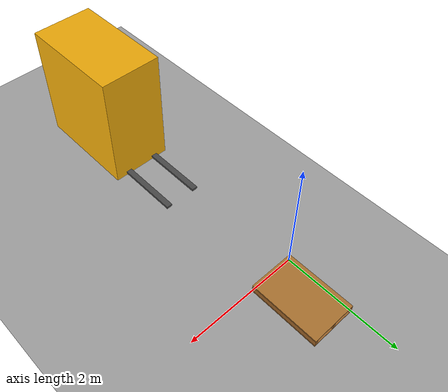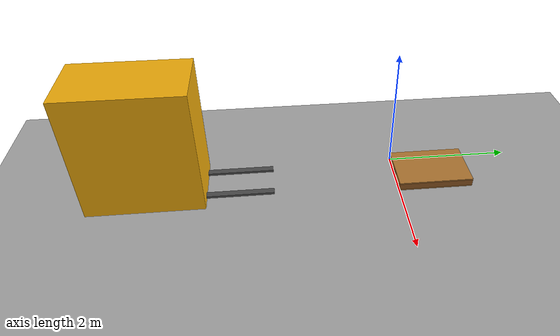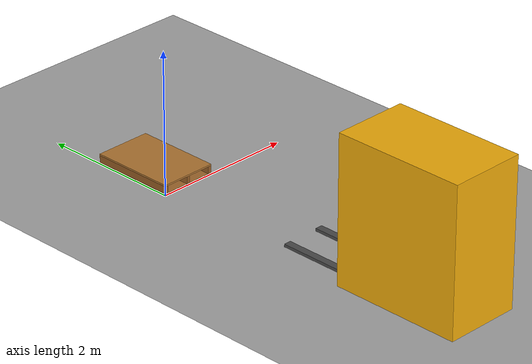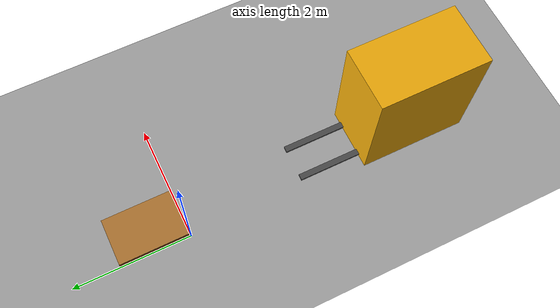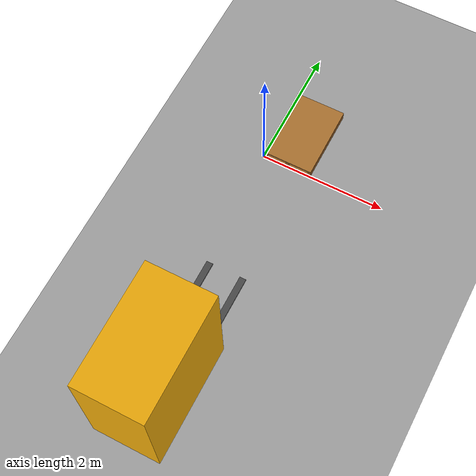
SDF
<?xml version="1.0" ?>
<sdf version="1.10">
  <world name="pallet_towers">
    <gravity>0 0 -9.81</gravity>

    <physics name="pallet_physics" type="ignored">
      <max_step_size>0.002</max_step_size>
      <real_time_factor>1</real_time_factor>
      <real_time_update_rate>500</real_time_update_rate>
      <max_contacts>100</max_contacts>
    </physics>

    <plugin filename="gz-sim-physics-system" name="gz::sim::systems::Physics" />
    <plugin filename="gz-sim-user-commands-system" name="gz::sim::systems::UserCommands" />
    <plugin filename="gz-sim-scene-broadcaster-system" name="gz::sim::systems::SceneBroadcaster" />

    <gui fullscreen="0">
      <plugin filename="MinimalScene" name="3D View">
        <gz-gui>
          <title>3D View</title>
          <property type="bool" key="showTitleBar">false</property>
          <property type="string" key="state">docked</property>
        </gz-gui>
        <engine>ogre2</engine>
        <scene>scene</scene>
        <ambient_light>0.4 0.4 0.4</ambient_light>
        <background_color>0.8 0.8 0.8</background_color>
        <camera_pose>-6 -8 6 0 0.45 0.75</camera_pose>
      </plugin>
      <plugin filename="GzSceneManager" name="Scene Manager" />
      <plugin filename="InteractiveViewControl" name="Interactive view control" />
      <plugin filename="CameraTracking" name="Camera Tracking" />
      <plugin filename="MarkerManager" name="Marker manager" />
      <plugin filename="SelectEntities" name="Select entities" />
      <plugin filename="EntityContextMenuPlugin" name="Entity context menu" />
      <plugin filename="VisualizationCapabilities" name="Visualization capabilities" />
      <plugin filename="WorldControl" name="World control">
        <gz-gui>
          <title>World control</title>
          <property type="bool" key="showTitleBar">false</property>
          <property type="bool" key="resizable">false</property>
          <property type="double" key="height">72</property>
          <property type="double" key="width">121</property>
          <property type="string" key="state">floating</property>
          <anchors target="3D View">
            <line own="left" target="left" />
            <line own="bottom" target="bottom" />
          </anchors>
        </gz-gui>
        <play_pause>true</play_pause>
        <step>true</step>
        <start_paused>true</start_paused>
      </plugin>
      <plugin filename="WorldStats" name="World stats">
        <gz-gui>
          <title>World stats</title>
          <property type="bool" key="showTitleBar">false</property>
          <property type="bool" key="resizable">false</property>
          <property type="double" key="height">110</property>
          <property type="double" key="width">290</property>
          <property type="string" key="state">floating</property>
          <anchors target="3D View">
            <line own="right" target="right" />
            <line own="bottom" target="bottom" />
          </anchors>
        </gz-gui>
        <sim_time>true</sim_time>
        <real_time>true</real_time>
        <real_time_factor>true</real_time_factor>
        <iterations>true</iterations>
      </plugin>
      <plugin filename="ForkliftTeleop"
              name="Forklift teleoperation">
        <gz-gui>
          <title>Forklift controls</title>
          <property type="double" key="width">330</property>
          <property type="double" key="height">230</property>
          <property type="string" key="state">floating</property>
          <anchors target="3D View">
            <line own="right" target="right" />
            <line own="top" target="top" />
          </anchors>
        </gz-gui>
        <drive_topic>/forklift/cmd_vel</drive_topic>
        <left_fork_topic>/forklift/left_fork/cmd_vel</left_fork_topic>
        <right_fork_topic>/forklift/right_fork/cmd_vel</right_fork_topic>
        <world_stats_topic>/world/pallet_towers/stats</world_stats_topic>
        <max_linear_speed>2</max_linear_speed>
        <max_linear_acceleration>0.5</max_linear_acceleration>
        <max_angular_speed>0.8</max_angular_speed>
        <max_angular_acceleration>1</max_angular_acceleration>
        <fork_speed>0.15</fork_speed>
        <update_rate_hz>50</update_rate_hz>
        <forward_key>16777235</forward_key>
        <reverse_key>16777237</reverse_key>
        <left_key>16777234</left_key>
        <right_key>16777236</right_key>
        <lift_key>16777235</lift_key>
        <lower_key>16777237</lower_key>
      </plugin>
    </gui>

    <light type="directional" name="sun">
      <cast_shadows>true</cast_shadows>
      <pose>0 0 10 0 0 0</pose>
      <diffuse>0.8 0.8 0.8 1</diffuse>
      <specular>0.2 0.2 0.2 1</specular>
      <direction>-0.5 0.2 -0.9</direction>
    </light>

    <model name="ground_plane">
      <static>true</static>
      <link name="link">
        <collision name="collision">
          <geometry>
            <plane>
              <normal>0 0 1</normal>
              <size>30 30</size>
            </plane>
          </geometry>

          <surface>
            <friction>
              <ode>
                <mu>0.55</mu>
                <mu2>0.55</mu2>
              </ode>
            </friction>
            <bounce>
              <restitution_coefficient>0</restitution_coefficient>
              <threshold>100000</threshold>
            </bounce>
            <contact>
              <ode>
                <kp>1000000</kp>
                <kd>100</kd>
                <max_vel>1</max_vel>
                <min_depth>0.0005</min_depth>
              </ode>
            </contact>
          </surface>
        </collision>

        <visual name="visual">
          <geometry>
            <plane>
              <normal>0 0 1</normal>
              <size>30 30</size>
            </plane>
          </geometry>
          <material>
            <ambient>0.65 0.65 0.65 1</ambient>
            <diffuse>0.65 0.65 0.65 1</diffuse>
          </material>
        </visual>
      </link>
    </model>

    <model name="pallet_01_P01">
          <static>false</static>
          <pose>0.4 0.6 0.002 0 0 0</pose>
          <self_collide>false</self_collide>
          <allow_auto_disable>false</allow_auto_disable>
          <link name="body">
                <gravity>true</gravity>
                <kinematic>false</kinematic>
                <inertial>
                      <pose>0 0 0.072 0 0 0</pose>
                      <mass>25</mass>
                      <inertia>
                            <ixx>3.07216082</ixx>
                            <ixy>0</ixy>
                            <ixz>0</ixz>
                            <iyy>1.70896776</iyy>
                            <iyz>0</iyz>
                            <izz>4.63680694</izz>
                      </inertia>
                </inertial>
                <collision name="bottom_deck_collision">
                      <pose>0 0 0.011 0 0 0</pose>
                      <geometry>
                            <box>
                                  <size>0.8 1.2 0.022</size>
                            </box>
                      </geometry>
                      <surface>
                            <friction>
                                  <ode>
                                        <mu>0.55</mu>
                                        <mu2>0.55</mu2>
                                  </ode>
                            </friction>
                            <bounce>
                                  <restitution_coefficient>0</restitution_coefficient>
                                  <threshold>100000</threshold>
                            </bounce>
                            <contact>
                                  <ode>
                                        <kp>1000000</kp>
                                        <kd>100</kd>
                                        <max_vel>1</max_vel>
                                        <min_depth>0.0005</min_depth>
                                  </ode>
                            </contact>
                      </surface>
                </collision>
                <visual name="bottom_deck_visual">
                      <pose>0 0 0.011 0 0 0</pose>
                      <geometry>
                            <box>
                                  <size>0.8 1.2 0.022</size>
                            </box>
                      </geometry>
                      <material>
                            <ambient>0.46 0.28 0.10 1</ambient>
                            <diffuse>0.64 0.42 0.18 1</diffuse>
                            <specular>0.03 0.03 0.03 1</specular>
                      </material>
                </visual>
                <collision name="left_stringer_collision">
                      <pose>-0.375 0 0.072 0 0 0</pose>
                      <geometry>
                            <box>
                                  <size>0.05 1.2 0.1</size>
                            </box>
                      </geometry>
                      <surface>
                            <friction>
                                  <ode>
                                        <mu>0.55</mu>
                                        <mu2>0.55</mu2>
                                  </ode>
                            </friction>
                            <bounce>
                                  <restitution_coefficient>0</restitution_coefficient>
                                  <threshold>100000</threshold>
                            </bounce>
                            <contact>
                                  <ode>
                                        <kp>1000000</kp>
                                        <kd>100</kd>
                                        <max_vel>1</max_vel>
                                        <min_depth>0.0005</min_depth>
                                  </ode>
                            </contact>
                      </surface>
                </collision>
                <visual name="left_stringer_visual">
                      <pose>-0.375 0 0.072 0 0 0</pose>
                      <geometry>
                            <box>
                                  <size>0.05 1.2 0.1</size>
                            </box>
                      </geometry>
                      <material>
                            <ambient>0.42 0.25 0.09 1</ambient>
                            <diffuse>0.58 0.36 0.14 1</diffuse>
                            <specular>0.03 0.03 0.03 1</specular>
                      </material>
                </visual>
                <collision name="centre_stringer_collision">
                      <pose>0 0 0.072 0 0 0</pose>
                      <geometry>
                            <box>
                                  <size>0.05 1.2 0.1</size>
                            </box>
                      </geometry>
                      <surface>
                            <friction>
                                  <ode>
                                        <mu>0.55</mu>
                                        <mu2>0.55</mu2>
                                  </ode>
                            </friction>
                            <bounce>
                                  <restitution_coefficient>0</restitution_coefficient>
                                  <threshold>100000</threshold>
                            </bounce>
                            <contact>
                                  <ode>
                                        <kp>1000000</kp>
                                        <kd>100</kd>
                                        <max_vel>1</max_vel>
                                        <min_depth>0.0005</min_depth>
                                  </ode>
                            </contact>
                      </surface>
                </collision>
                <visual name="centre_stringer_visual">
                      <pose>0 0 0.072 0 0 0</pose>
                      <geometry>
                            <box>
                                  <size>0.05 1.2 0.1</size>
                            </box>
                      </geometry>
                      <material>
                            <ambient>0.42 0.25 0.09 1</ambient>
                            <diffuse>0.58 0.36 0.14 1</diffuse>
                            <specular>0.03 0.03 0.03 1</specular>
                      </material>
                </visual>
                <collision name="right_stringer_collision">
                      <pose>0.375 0 0.072 0 0 0</pose>
                      <geometry>
                            <box>
                                  <size>0.05 1.2 0.1</size>
                            </box>
                      </geometry>
                      <surface>
                            <friction>
                                  <ode>
                                        <mu>0.55</mu>
                                        <mu2>0.55</mu2>
                                  </ode>
                            </friction>
                            <bounce>
                                  <restitution_coefficient>0</restitution_coefficient>
                                  <threshold>100000</threshold>
                            </bounce>
                            <contact>
                                  <ode>
                                        <kp>1000000</kp>
                                        <kd>100</kd>
                                        <max_vel>1</max_vel>
                                        <min_depth>0.0005</min_depth>
                                  </ode>
                            </contact>
                      </surface>
                </collision>
                <visual name="right_stringer_visual">
                      <pose>0.375 0 0.072 0 0 0</pose>
                      <geometry>
                            <box>
                                  <size>0.05 1.2 0.1</size>
                            </box>
                      </geometry>
                      <material>
                            <ambient>0.42 0.25 0.09 1</ambient>
                            <diffuse>0.58 0.36 0.14 1</diffuse>
                            <specular>0.03 0.03 0.03 1</specular>
                      </material>
                </visual>
                <collision name="top_deck_collision">
                      <pose>0 0 0.133 0 0 0</pose>
                      <geometry>
                            <box>
                                  <size>0.8 1.2 0.022</size>
                            </box>
                      </geometry>
                      <surface>
                            <friction>
                                  <ode>
                                        <mu>0.55</mu>
                                        <mu2>0.55</mu2>
                                  </ode>
                            </friction>
                            <bounce>
                                  <restitution_coefficient>0</restitution_coefficient>
                                  <threshold>100000</threshold>
                            </bounce>
                            <contact>
                                  <ode>
                                        <kp>1000000</kp>
                                        <kd>100</kd>
                                        <max_vel>1</max_vel>
                                        <min_depth>0.0005</min_depth>
                                  </ode>
                            </contact>
                      </surface>
                </collision>
                <visual name="top_deck_visual">
                      <pose>0 0 0.133 0 0 0</pose>
                      <geometry>
                            <box>
                                  <size>0.8 1.2 0.022</size>
                            </box>
                      </geometry>
                      <material>
                            <ambient>0.50 0.31 0.11 1</ambient>
                            <diffuse>0.70 0.47 0.20 1</diffuse>
                            <specular>0.03 0.03 0.03 1</specular>
                      </material>
                </visual>
          </link>
    </model>

    <model name="forklift">
          <static>false</static>
          <pose>0.4 -3.982 0 0 0 1.57079633</pose>
          <self_collide>false</self_collide>
          <allow_auto_disable>false</allow_auto_disable>
          <canonical_link>base_link</canonical_link>
          <link name="base_link">
                <gravity>true</gravity>
                <kinematic>false</kinematic>
                <inertial>
                      <pose>0 0 1.025 0 0 0</pose>
                      <mass>2500</mass>
                      <inertia>
                            <ixx>1105.20833</ixx>
                            <ixy>0</ixy>
                            <ixz>0</ixz>
                            <iyy>1573.20833</iyy>
                            <iyz>0</iyz>
                            <izz>927.375</izz>
                      </inertia>
                </inertial>
                <collision name="body_collision">
                      <pose>0 0 1.025 0 0 0</pose>
                      <geometry>
                            <box>
                                  <size>1.83 1.05 2.05</size>
                            </box>
                      </geometry>
                      <surface>
                            <friction>
                                  <ode>
                                        <mu>0.9</mu>
                                        <mu2>0.9</mu2>
                                  </ode>
                            </friction>
                            <bounce>
                                  <restitution_coefficient>0</restitution_coefficient>
                                  <threshold>100000</threshold>
                            </bounce>
                            <contact>
                                  <ode>
                                        <kp>1000000</kp>
                                        <kd>100</kd>
                                        <max_vel>0.5</max_vel>
                                        <min_depth>0.0005</min_depth>
                                  </ode>
                            </contact>
                      </surface>
                </collision>
                <visual name="body_visual">
                      <pose>0 0 1.025 0 0 0</pose>
                      <geometry>
                            <box>
                                  <size>1.83 1.05 2.05</size>
                            </box>
                      </geometry>
                      <material>
                            <ambient>0.82 0.55 0.02 1</ambient>
                            <diffuse>0.95 0.68 0.04 1</diffuse>
                            <specular>0.08 0.08 0.08 1</specular>
                      </material>
                </visual>
          </link>
          <link name="left_fork_link">
                <pose>1.4485 0.275 0.05 0 0 0</pose>
                <gravity>true</gravity>
                <kinematic>false</kinematic>
                <inertial>
                      <mass>35</mass>
                      <inertia>
                            <ixx>0.0350116667</ixx>
                            <ixy>0</ixy>
                            <ixz>0</ixz>
                            <iyy>3.32525958</iyy>
                            <iyz>0</iyz>
                            <izz>3.35093792</izz>
                      </inertia>
                </inertial>
                <collision name="left_fork_collision">
                      <geometry>
                            <box>
                                  <size>1.067 0.102 0.04</size>
                            </box>
                      </geometry>
                      <surface>
                            <friction>
                                  <ode>
                                        <mu>0.85</mu>
                                        <mu2>0.85</mu2>
                                  </ode>
                            </friction>
                            <bounce>
                                  <restitution_coefficient>0</restitution_coefficient>
                                  <threshold>100000</threshold>
                            </bounce>
                            <contact>
                                  <ode>
                                        <kp>1000000</kp>
                                        <kd>100</kd>
                                        <max_vel>0.5</max_vel>
                                        <min_depth>0.0002</min_depth>
                                  </ode>
                            </contact>
                      </surface>
                </collision>
                <visual name="left_fork_visual">
                      <geometry>
                            <box>
                                  <size>1.067 0.102 0.04</size>
                            </box>
                      </geometry>
                      <material>
                            <ambient>0.18 0.18 0.18 1</ambient>
                            <diffuse>0.30 0.30 0.30 1</diffuse>
                            <specular>0.20 0.20 0.20 1</specular>
                      </material>
                </visual>
          </link>
          <link name="right_fork_link">
                <pose>1.4485 -0.275 0.05 0 0 0</pose>
                <gravity>true</gravity>
                <kinematic>false</kinematic>
                <inertial>
                      <mass>35</mass>
                      <inertia>
                            <ixx>0.0350116667</ixx>
                            <ixy>0</ixy>
                            <ixz>0</ixz>
                            <iyy>3.32525958</iyy>
                            <iyz>0</iyz>
                            <izz>3.35093792</izz>
                      </inertia>
                </inertial>
                <collision name="right_fork_collision">
                      <geometry>
                            <box>
                                  <size>1.067 0.102 0.04</size>
                            </box>
                      </geometry>
                      <surface>
                            <friction>
                                  <ode>
                                        <mu>0.85</mu>
                                        <mu2>0.85</mu2>
                                  </ode>
                            </friction>
                            <bounce>
                                  <restitution_coefficient>0</restitution_coefficient>
                                  <threshold>100000</threshold>
                            </bounce>
                            <contact>
                                  <ode>
                                        <kp>1000000</kp>
                                        <kd>100</kd>
                                        <max_vel>0.5</max_vel>
                                        <min_depth>0.0002</min_depth>
                                  </ode>
                            </contact>
                      </surface>
                </collision>
                <visual name="right_fork_visual">
                      <geometry>
                            <box>
                                  <size>1.067 0.102 0.04</size>
                            </box>
                      </geometry>
                      <material>
                            <ambient>0.18 0.18 0.18 1</ambient>
                            <diffuse>0.30 0.30 0.30 1</diffuse>
                            <specular>0.20 0.20 0.20 1</specular>
                      </material>
                </visual>
          </link>
          <joint name="left_fork_joint" type="prismatic">
                <parent>base_link</parent>
                <child>left_fork_link</child>
                <axis>
                      <xyz>0 0 1</xyz>
                      <limit>
                            <lower>0</lower>
                            <upper>1.98</upper>
                            <effort>250000</effort>
                            <velocity>0.15</velocity>
                      </limit>
                      <dynamics>
                            <damping>50</damping>
                            <friction>5</friction>
                      </dynamics>
                </axis>
          </joint>
          <joint name="right_fork_joint" type="prismatic">
                <parent>base_link</parent>
                <child>right_fork_link</child>
                <axis>
                      <xyz>0 0 1</xyz>
                      <limit>
                            <lower>0</lower>
                            <upper>1.98</upper>
                            <effort>250000</effort>
                            <velocity>0.15</velocity>
                      </limit>
                      <dynamics>
                            <damping>50</damping>
                            <friction>5</friction>
                      </dynamics>
                </axis>
          </joint>
          <plugin filename="gz-sim-velocity-control-system" name="gz::sim::systems::VelocityControl">
                <topic>/forklift/cmd_vel</topic>
          </plugin>
          <plugin filename="gz-sim-joint-controller-system" name="gz::sim::systems::JointController">
                <joint_name>left_fork_joint</joint_name>
                <topic>/forklift/left_fork/cmd_vel</topic>
                <use_force_commands>false</use_force_commands>
          </plugin>
          <plugin filename="gz-sim-joint-controller-system" name="gz::sim::systems::JointController">
                <joint_name>right_fork_joint</joint_name>
                <topic>/forklift/right_fork/cmd_vel</topic>
                <use_force_commands>false</use_force_commands>
          </plugin>
    </model>

  </world>
</sdf>
